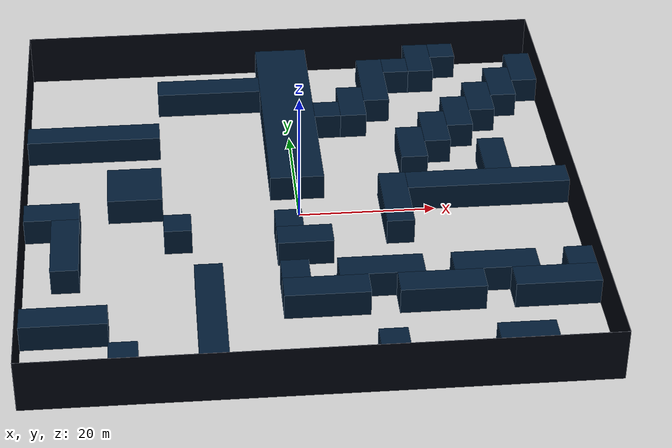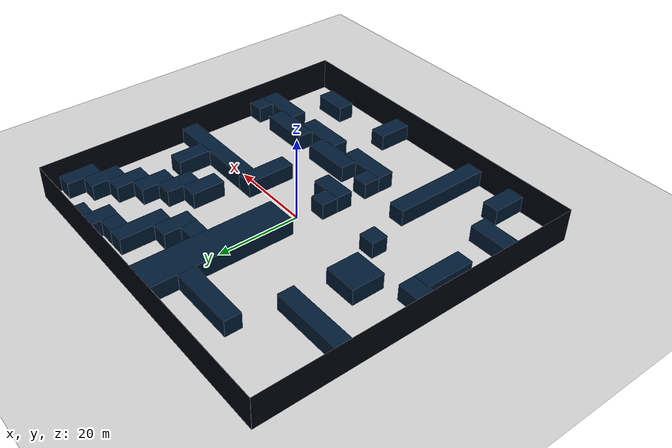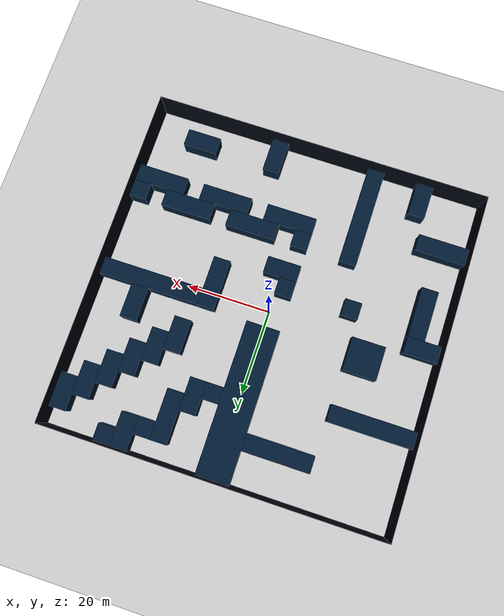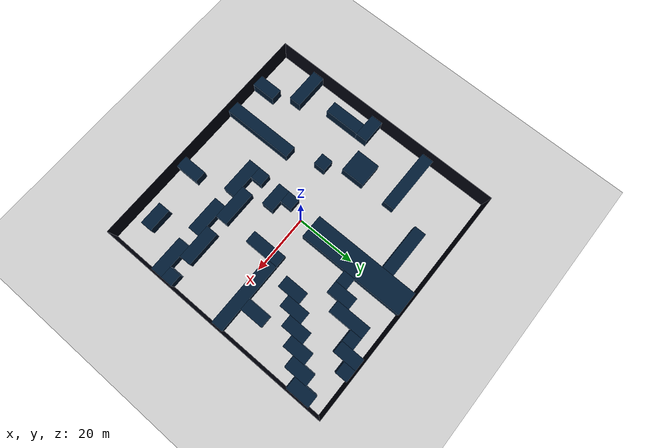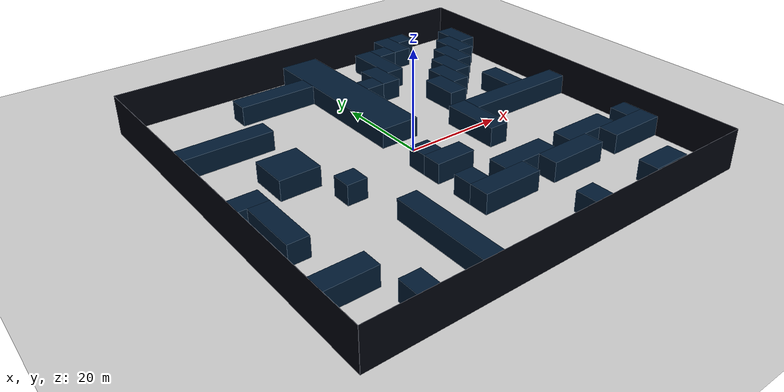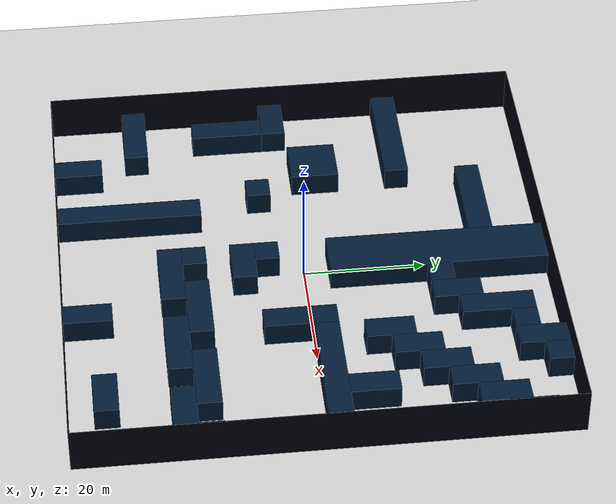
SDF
<?xml version="1.0"?>
<sdf version='1.8'>
    <world name='maze_4x'>
        <physics name='1ms' type='ignored'>
            <max_step_size>0.003</max_step_size>
            <real_time_factor>1</real_time_factor>
            <real_time_update_rate>1000</real_time_update_rate>
        </physics>

        <!-- Plugins remain the same -->
        <plugin name="gz::sim::systems::Physics" filename="gz-sim-physics-system" />
        <plugin name="gz::sim::systems::UserCommands" filename="gz-sim-user-commands-system" />
        <plugin name="gz::sim::systems::SceneBroadcaster" filename="gz-sim-scene-broadcaster-system" />
        <plugin name="gz::sim::systems::Contact" filename="gz-sim-contact-system" />
        <plugin name="gz::sim::systems::Sensors" filename="gz-sim-sensors-system">
            <render_engine>ogre2</render_engine>
        </plugin>

        <gui fullscreen="0">
          <camera name="user_camera">
            <!-- Camera pose scaled 4x: -10 -10 15 -> -40 -40 60 -->
            <pose>-40 -40 60 0 0.7 0.8</pose>
            <view_controller>orbit</view_controller>
          </camera>
        </gui>

        <light name='sun' type='directional'>
            <cast_shadows>1</cast_shadows>
            <!-- Light pose Z coordinate scaled 4x: 10 -> 40 -->
            <pose>0 0 40 0 -0 0</pose>
            <diffuse>0.8 0.8 0.8 1</diffuse>
            <specular>0.2 0.2 0.2 1</specular>
            <attenuation>
                <!-- Range scaled 4x: 1000 -> 4000 -->
                <range>4000</range>
                <constant>0.90000000000000002</constant>
                <linear>0.01</linear>
                <quadratic>0.001</quadratic>
            </attenuation>
            <direction>-0.5 0.1 -0.9</direction>
            <spot>
                <inner_angle>0</inner_angle>
                <outer_angle>0</outer_angle>
                <falloff>0</falloff>
            </spot>
        </light>
        <gravity>0 0 -9.8</gravity>
        <magnetic_field>6e-06 2.3e-05 -4.2e-05</magnetic_field>
        <atmosphere type='adiabatic' />
        <scene>
            <ambient>0.4 0.4 0.4 1</ambient>
            <background>0.7 0.7 0.7 1</background>
            <shadows>1</shadows>
        </scene>
        <model name='ground_plane'>
            <static>1</static>
            <link name='link'>
                <collision name='collision'>
                    <geometry>
                        <plane>
                            <normal>0 0 1</normal>
                            <!-- Size scaled 4x: 100 100 -> 400 400 -->
                            <size>400 400</size>
                        </plane>
                    </geometry>
                    <surface>
                        <friction>
                            <ode />
                        </friction>
                        <bounce />
                        <contact />
                    </surface>
                </collision>
                <visual name='visual'>
                    <geometry>
                        <plane>
                            <normal>0 0 1</normal>
                            <!-- Size scaled 4x: 100 100 -> 400 400 -->
                            <size>400 400</size>
                        </plane>
                    </geometry>
                    <material>
                        <ambient>0.8 0.8 0.8 1</ambient>
                        <diffuse>0.8 0.8 0.8 1</diffuse>
                        <specular>0.8 0.8 0.8 1</specular>
                    </material>
                    <plugin name='__default__' filename='__default__' />
                </visual>
            </link>
            <plugin name='__default__' filename='__default__' />
            <pose>0 0 0 0 -0 0</pose>
        </model>

        <model name='border'>
            <!-- Border Z pose scaled 4x: 1 -> 4 -->
            <pose>0 0 4 0 0 0</pose>
            <static>true</static>
            <link name='wall1'>
                <!-- Pose scaled 4x: -10.005 0 0 -> -40.02 0 0 -->
                <pose>-40.02 0 0 0 0 0</pose>
                <static>true</static>
                <collision name='wall1_collision'>
                    <geometry>
                        <!-- Size scaled 4x: 0.01 20 2 -> 0.04 80 8 -->
                        <box>
                            <size>0.04 80 8</size>
                        </box>
                    </geometry>
                </collision>
                <visual name='wall1_visual'>
                    <geometry>
                        <box>
                            <size>0.04 80 8</size>
                        </box>
                    </geometry>
                    <material>
                        <ambient>0.1 0.1 0.1 1</ambient>
                        <diffuse>0 0.01 0.05 1</diffuse>
                        <specular>0 0.01 0.05 1</specular>
                    </material>
                </visual>
            </link>
            <link name='wall2'>
                <!-- Pose scaled 4x: 10.005 0 0 -> 40.02 0 0 -->
                <pose>40.02 0 0 0 0 0</pose>
                <static>true</static>
                <collision name='wall2_collision'>
                    <geometry>
                        <!-- Size scaled 4x: 0.01 20 2 -> 0.04 80 8 -->
                        <box>
                            <size>0.04 80 8</size>
                        </box>
                    </geometry>
                </collision>
                <visual name='wall2_visual'>
                    <geometry>
                        <box>
                            <size>0.04 80 8</size>
                        </box>
                    </geometry>
                    <material>
                        <ambient>0.1 0.1 0.1 1</ambient>
                        <diffuse>0 0.01 0.05 1</diffuse>
                        <specular>0 0.01 0.05 1</specular>
                    </material>
                </visual>
            </link>
            <link name='wall3'>
                <!-- Pose scaled 4x: 0 10.005 0 -> 0 40.02 0 -->
                <pose>0 40.02 0 0 0 0</pose>
                <static>true</static>
                <collision name='wall3_collision'>
                    <geometry>
                        <!-- Size scaled 4x: 20 0.01 2 -> 80 0.04 8 -->
                        <box>
                            <size>80 0.04 8</size>
                        </box>
                    </geometry>
                </collision>
                <visual name='wall3_visual'>
                    <geometry>
                        <box>
                            <size>80 0.04 8</size>
                        </box>
                    </geometry>
                    <material>
                        <ambient>0.1 0.1 0.1 1</ambient>
                        <diffuse>0 0.01 0.05 1</diffuse>
                        <specular>0 0.01 0.05 1</specular>
                    </material>
                </visual>
            </link>
            <link name='wall4'>
                <!-- Pose scaled 4x: 0 -10.005 0 -> 0 -40.02 0 -->
                <pose>0 -40.02 0 0 0 0</pose>
                <static>true</static>
                <collision name='wall4_collision'>
                    <geometry>
                        <!-- Size scaled 4x: 20 0.01 2 -> 80 0.04 8 -->
                        <box>
                            <size>80 0.04 8</size>
                        </box>
                    </geometry>
                    <material>
                        <ambient>0.1 0.1 0.1 1</ambient>
                        <diffuse>0 0.01 0.05 1</diffuse>
                        <specular>0 0.01 0.05 1</specular>
                    </material>
                </collision>
                <visual name='wall4_visual'>
                    <geometry>
                        <box>
                            <size>80 0.04 8</size>
                        </box>
                    </geometry>
                    <material>
                        <ambient>0.1 0.1 0.1 1</ambient>
                        <diffuse>0 0.01 0.05 1</diffuse>
                        <specular>0 0.01 0.05 1</specular>
                    </material>
                </visual>
            </link>
        </model>

        <model name='obstacles'>
            <!-- Obstacles Z pose scaled 4x: 0.5 -> 2 -->
            <pose>0 0 2 0 0 0</pose>
            <static>true</static>
            <link name='wall1'>
                <!-- Pose scaled 4x: -6.5 -9 0 -> -26 -36 0.0 -->
                <!-- Size scaled 4x: 1 2 1 -> 4 8 4 -->
                <pose>-26 -36 0 0 0 0</pose>
                <static>true</static>
                <collision name='wall1_collision'>
                    <geometry>
                        <box>
                            <size>4 8 4</size>
                        </box>
                    </geometry>
                </collision>
                <visual name='wall1_visual'>
                    <geometry>
                        <box>
                            <size>4 8 4</size>
                        </box>
                    </geometry>
                    <material>
                        <ambient>0.1 0.1 0.1 1</ambient>
                        <diffuse>0 0.1 0.2 1</diffuse>
                        <specular>0 0.01 0.05 1</specular>
                    </material>
                </visual>
            </link>

            <link name='wall2'>
                <!-- Pose scaled 4x: -8.5 -6.5 0 -> -34 -26 0.0 -->
                <!-- Size scaled 4x: 3 1 1 -> 12 4 4 -->
                <pose>-34 -26 0 0 0 0</pose>
                <static>true</static>
                <collision name='wall2_collision'>
                    <geometry>
                        <box>
                            <size>12 4 4</size>
                        </box>
                    </geometry>
                </collision>
                <visual name='wall2_visual'>
                    <geometry>
                        <box>
                            <size>12 4 4</size>
                        </box>
                    </geometry>
                    <material>
                        <ambient>0.1 0.1 0.1 1</ambient>
                        <diffuse>0 0.1 0.2 1</diffuse>
                        <specular>0 0.01 0.05 1</specular>
                    </material>
                </visual>
            </link>

            <link name='wall3'>
                <!-- Pose scaled 4x: -3.5 -7 0 -> -14 -28 0.0 -->
                <!-- Size scaled 4x: 1 6 1 -> 4 24 4 -->
                <pose>-14 -28 0 0 0 0</pose>
                <static>true</static>
                <collision name='wall3_collision'>
                    <geometry>
                        <box>
                            <size>4 24 4</size>
                        </box>
                    </geometry>
                </collision>
                <visual name='wall3_visual'>
                    <geometry>
                        <box>
                            <size>4 24 4</size>
                        </box>
                    </geometry>
                    <material>
                        <ambient>0.1 0.1 0.1 1</ambient>
                        <diffuse>0 0.1 0.2 1</diffuse>
                        <specular>0 0.01 0.05 1</specular>
                    </material>
                </visual>
            </link>

            <link name='wall4'>
                <!-- Pose scaled 4x: 2.5 -9 0 -> 10 -36 0.0 -->
                <!-- Size scaled 4x: 1 2 1 -> 4 8 4 -->
                <pose>10 -36 0 0 0 0</pose>
                <static>true</static>
                <collision name='wall4_collision'>
                    <geometry>
                        <box>
                            <size>4 8 4</size>
                        </box>
                    </geometry>
                </collision>
                <visual name='wall4_visual'>
                    <geometry>
                        <box>
                            <size>4 8 4</size>
                        </box>
                    </geometry>
                    <material>
                        <ambient>0.1 0.1 0.1 1</ambient>
                        <diffuse>0 0.1 0.2 1</diffuse>
                        <specular>0 0.01 0.05 1</specular>
                    </material>
                </visual>
            </link>

            <link name='wall5'>
                <!-- Pose scaled 4x: 7 -8.5 0 -> 28 -34 0.0 -->
                <!-- Size scaled 4x: 2 1 1 -> 8 4 4 -->
                <pose>28 -34 0 0 0 0</pose>
                <static>true</static>
                <collision name='wall5_collision'>
                    <geometry>
                        <box>
                            <size>8 4 4</size>
                        </box>
                    </geometry>
                </collision>
                <visual name='wall5_visual'>
                    <geometry>
                        <box>
                            <size>8 4 4</size>
                        </box>
                    </geometry>
                    <material>
                        <ambient>0.1 0.1 0.1 1</ambient>
                        <diffuse>0 0.1 0.2 1</diffuse>
                        <specular>0 0.01 0.05 1</specular>
                    </material>
                </visual>
            </link>

            <link name='wall6'>
                <!-- Pose scaled 4x: -9 -0.5 0 -> -36 -2 0.0 -->
                <!-- Size scaled 4x: 2 1 1 -> 8 4 4 -->
                <pose>-36 -2 0 0 0 0</pose>
                <static>true</static>
                <collision name='wall6_collision'>
                    <geometry>
                        <box>
                            <size>8 4 4</size>
                        </box>
                    </geometry>
                </collision>
                <visual name='wall6_visual'>
                    <geometry>
                        <box>
                            <size>8 4 4</size>
                        </box>
                    </geometry>
                    <material>
                        <ambient>0.1 0.1 0.1 1</ambient>
                        <diffuse>0 0.1 0.2 1</diffuse>
                        <specular>0 0.01 0.05 1</specular>
                    </material>
                </visual>
            </link>

            <link name='wall7'>
                <!-- Pose scaled 4x: -8.5 -2.5 0 -> -34 -10 0.0 -->
                <!-- Size scaled 4x: 1 3 1 -> 4 12 4 -->
                <pose>-34 -10 0 0 0 0</pose>
                <static>true</static>
                <collision name='wall7_collision'>
                    <geometry>
                        <box>
                            <size>4 12 4</size>
                        </box>
                    </geometry>
                </collision>
                <visual name='wall7_visual'>
                    <geometry>
                        <box>
                            <size>4 12 4</size>
                        </box>
                    </geometry>
                    <material>
                        <ambient>0.1 0.1 0.1 1</ambient>
                        <diffuse>0 0.1 0.2 1</diffuse>
                        <specular>0 0.01 0.05 1</specular>
                    </material>
                </visual>
            </link>

            <link name='wall8'>
                <!-- Pose scaled 4x: -4.5 -1.5 0 -> -18 -6 0.0 -->
                <!-- Size scaled 4x: 1 1 1 -> 4 4 4 -->
                <pose>-18 -6 0 0 0 0</pose>
                <static>true</static>
                <collision name='wall8_collision'>
                    <geometry>
                        <box>
                            <size>4 4 4</size>
                        </box>
                    </geometry>
                </collision>
                <visual name='wall8_visual'>
                    <geometry>
                        <box>
                            <size>4 4 4</size>
                        </box>
                    </geometry>
                    <material>
                        <ambient>0.1 0.1 0.1 1</ambient>
                        <diffuse>0 0.1 0.2 1</diffuse>
                        <specular>0 0.01 0.05 1</specular>
                    </material>
                </visual>
            </link>

            <link name='wall9'>
                <!-- Pose scaled 4x: -6 1 0 -> -24 4 0.0 -->
                <!-- Size scaled 4x: 2 2 1 -> 8 8 4 -->
                <pose>-24 4 0 0 0 0</pose>
                <static>true</static>
                <collision name='wall9_collision'>
                    <geometry>
                        <box>
                            <size>8 8 4</size>
                        </box>
                    </geometry>
                </collision>
                <visual name='wall9_visual'>
                    <geometry>
                        <box>
                            <size>8 8 4</size>
                        </box>
                    </geometry>
                    <material>
                        <ambient>0.1 0.1 0.1 1</ambient>
                        <diffuse>0 0.1 0.2 1</diffuse>
                        <specular>0 0.01 0.05 1</specular>
                    </material>
                </visual>
            </link>

            <link name='wall10'>
                <!-- Pose scaled 4x: -7.5 4.5 0 -> -30 18 0.0 -->
                <!-- Size scaled 4x: 5 1 1 -> 20 4 4 -->
                <pose>-30 18 0 0 0 0</pose>
                <static>true</static>
                <collision name='wall10_collision'>
                    <geometry>
                        <box>
                            <size>20 4 4</size>
                        </box>
                    </geometry>
                </collision>
                <visual name='wall10_visual'>
                    <geometry>
                        <box>
                            <size>20 4 4</size>
                        </box>
                    </geometry>
                    <material>
                        <ambient>0.1 0.1 0.1 1</ambient>
                        <diffuse>0 0.1 0.2 1</diffuse>
                        <specular>0 0.01 0.05 1</specular>
                    </material>
                </visual>
            </link>

            <link name='wall11'>
                <!-- Pose scaled 4x: -3 7.5 0 -> -12 30 0.0 -->
                <!-- Size scaled 4x: 4 1 1 -> 16 4 4 -->
                <pose>-12 30 0 0 0 0</pose>
                <static>true</static>
                <collision name='wall11_collision'>
                    <geometry>
                        <box>
                            <size>16 4 4</size>
                        </box>
                    </geometry>
                </collision>
                <visual name='wall11_visual'>
                    <geometry>
                        <box>
                            <size>16 4 4</size>
                        </box>
                    </geometry>
                    <material>
                        <ambient>0.1 0.1 0.1 1</ambient>
                        <diffuse>0 0.1 0.2 1</diffuse>
                        <specular>0 0.01 0.05 1</specular>
                    </material>
                </visual>
            </link>
            <link name='wall12'>
                <!-- Pose scaled 4x: 0 5.5 0 -> 0 22 0.0 -->
                <!-- Size scaled 4x: 2 9 1 -> 8 36 4 -->
                <pose>0 22 0 0 0 0</pose>
                <static>true</static>
                <collision name='wall12_collision'>
                    <geometry>
                        <box>
                            <size>8 36 4</size>
                        </box>
                    </geometry>
                </collision>
                <visual name='wall12_visual'>
                    <geometry>
                        <box>
                            <size>8 36 4</size>
                        </box>
                    </geometry>
                    <material>
                        <ambient>0.1 0.1 0.1 1</ambient>
                        <diffuse>0 0.1 0.2 1</diffuse>
                        <specular>0 0.01 0.05 1</specular>
                    </material>
                </visual>
            </link>

            <link name='wall13'>
                <!-- Pose scaled 4x: 0 -2.5 0 -> 0 -10 0.0 -->
                <!-- Size scaled 4x: 2 1 1 -> 8 4 4 -->
                <pose>0 -10 0 0 0 0</pose>
                <static>true</static>
                <collision name='wall13_collision'>
                    <geometry>
                        <box>
                            <size>8 4 4</size>
                        </box>
                    </geometry>
                </collision>
                <visual name='wall13_visual'>
                    <geometry>
                        <box>
                            <size>8 4 4</size>
                        </box>
                    </geometry>
                    <material>
                        <ambient>0.1 0.1 0.1 1</ambient>
                        <diffuse>0 0.1 0.2 1</diffuse>
                        <specular>0 0.01 0.05 1</specular>
                    </material>
                </visual>
            </link>

            <link name='wall14'>
                <!-- Pose scaled 4x: -0.5 -1.5 0 -> -2 -6 0.0 -->
                <!-- Size scaled 4x: 1 1 1 -> 4 4 4 -->
                <pose>-2 -6 0 0 0 0</pose>
                <static>true</static>
                <collision name='wall14_collision'>
                    <geometry>
                        <box>
                            <size>4 4 4</size>
                        </box>
                    </geometry>
                </collision>
                <visual name='wall14_visual'>
                    <geometry>
                        <box>
                            <size>4 4 4</size>
                        </box>
                    </geometry>
                    <material>
                        <ambient>0.1 0.1 0.1 1</ambient>
                        <diffuse>0 0.1 0.2 1</diffuse>
                        <specular>0 0.01 0.05 1</specular>
                    </material>
                </visual>
            </link>

            <link name='wall15'>
                <!-- Pose scaled 4x: -0.5 -4.5 0 -> -2 -18 0.0 -->
                <!-- Size scaled 4x: 1 1 1 -> 4 4 4 -->
                <pose>-2 -18 0 0 0 0</pose>
                <static>true</static>
                <collision name='wall15_collision'>
                    <geometry>
                        <box>
                            <size>4 4 4</size>
                        </box>
                    </geometry>
                </collision>
                <visual name='wall15_visual'>
                    <geometry>
                        <box>
                            <size>4 4 4</size>
                        </box>
                    </geometry>
                    <material>
                        <ambient>0.1 0.1 0.1 1</ambient>
                        <diffuse>0 0.1 0.2 1</diffuse>
                        <specular>0 0.01 0.05 1</specular>
                    </material>
                </visual>
            </link>

            <link name='wall16'>
                <!-- Pose scaled 4x: 0.5 -5.5 0 -> 2 -22 0.0 -->
                <!-- Size scaled 4x: 3 1 1 -> 12 4 4 -->
                <pose>2 -22 0 0 0 0</pose>
                <static>true</static>
                <collision name='wall16_collision'>
                    <geometry>
                        <box>
                            <size>12 4 4</size>
                        </box>
                    </geometry>
                </collision>
                <visual name='wall16_visual'>
                    <geometry>
                        <box>
                            <size>12 4 4</size>
                        </box>
                    </geometry>
                    <material>
                        <ambient>0.1 0.1 0.1 1</ambient>
                        <diffuse>0 0.1 0.2 1</diffuse>
                        <specular>0 0.01 0.05 1</specular>
                    </material>
                </visual>
            </link>

            <link name='wall17'>
                <!-- Pose scaled 4x: 2.5 -4.5 0 -> 10 -18 0.0 -->
                <!-- Size scaled 4x: 3 1 1 -> 12 4 4 -->
                <pose>10 -18 0 0 0 0</pose>
                <static>true</static>
                <collision name='wall17_collision'>
                    <geometry>
                        <box>
                            <size>12 4 4</size>
                        </box>
                    </geometry>
                </collision>
                <visual name='wall17_visual'>
                    <geometry>
                        <box>
                            <size>12 4 4</size>
                        </box>
                    </geometry>
                    <material>
                        <ambient>0.1 0.1 0.1 1</ambient>
                        <diffuse>0 0.1 0.2 1</diffuse>
                        <specular>0 0.01 0.05 1</specular>
                    </material>
                </visual>
            </link>

            <link name='wall18'>
                <!-- Pose scaled 4x: 4.5 -5.5 0 -> 18 -22 0.0 -->
                <!-- Size scaled 4x: 3 1 1 -> 12 4 4 -->
                <pose>18 -22 0 0 0 0</pose>
                <static>true</static>
                <collision name='wall18_collision'>
                    <geometry>
                        <box>
                            <size>12 4 4</size>
                        </box>
                    </geometry>
                </collision>
                <visual name='wall18_visual'>
                    <geometry>
                        <box>
                            <size>12 4 4</size>
                        </box>
                    </geometry>
                    <material>
                        <ambient>0.1 0.1 0.1 1</ambient>
                        <diffuse>0 0.1 0.2 1</diffuse>
                        <specular>0 0.01 0.05 1</specular>
                    </material>
                </visual>
            </link>

            <link name='wall19'>
                <!-- Pose scaled 4x: 6.5 -4.5 0 -> 26 -18 0.0 -->
                <!-- Size scaled 4x: 3 1 1 -> 12 4 4 -->
                <pose>26 -18 0 0 0 0</pose>
                <static>true</static>
                <collision name='wall19_collision'>
                    <geometry>
                        <box>
                            <size>12 4 4</size>
                        </box>
                    </geometry>
                </collision>
                <visual name='wall19_visual'>
                    <geometry>
                        <box>
                            <size>12 4 4</size>
                        </box>
                    </geometry>
                    <material>
                        <ambient>0.1 0.1 0.1 1</ambient>
                        <diffuse>0 0.1 0.2 1</diffuse>
                        <specular>0 0.01 0.05 1</specular>
                    </material>
                </visual>
            </link>

            <link name='wall20'>
                <!-- Pose scaled 4x: 8.5 -5.5 0 -> 34 -22 0.0 -->
                <!-- Size scaled 4x: 3 1 1 -> 12 4 4 -->
                <pose>34 -22 0 0 0 0</pose>
                <static>true</static>
                <collision name='wall20_collision'>
                    <geometry>
                        <box>
                            <size>12 4 4</size>
                        </box>
                    </geometry>
                </collision>
                <visual name='wall20_visual'>
                    <geometry>
                        <box>
                            <size>12 4 4</size>
                        </box>
                    </geometry>
                    <material>
                        <ambient>0.1 0.1 0.1 1</ambient>
                        <diffuse>0 0.1 0.2 1</diffuse>
                        <specular>0 0.01 0.05 1</specular>
                    </material>
                </visual>
            </link>

            <link name='wall21'>
                <!-- Pose scaled 4x: 9.5 -4.5 0 -> 38 -18 0.0 -->
                <!-- Size scaled 4x: 1 1 1 -> 4 4 4 -->
                <pose>38 -18 0 0 0 0</pose>
                <static>true</static>
                <collision name='wall21_collision'>
                    <geometry>
                        <box>
                            <size>4 4 4</size>
                        </box>
                    </geometry>
                </collision>
                <visual name='wall21_visual'>
                    <geometry>
                        <box>
                            <size>4 4 4</size>
                        </box>
                    </geometry>
                    <material>
                        <ambient>0.1 0.1 0.1 1</ambient>
                        <diffuse>0 0.1 0.2 1</diffuse>
                        <specular>0 0.01 0.05 1</specular>
                    </material>
                </visual>
            </link>

            <link name='wall22'>
                <!-- Pose scaled 4x: 3.5 -0.5 0 -> 14 -2 0.0 -->
                <!-- Size scaled 4x: 1 3 1 -> 4 12 4 -->
                <pose>14 -2 0 0 0 0</pose>
                <static>true</static>
                <collision name='wall22_collision'>
                    <geometry>
                        <box>
                            <size>4 12 4</size>
                        </box>
                    </geometry>
                </collision>
                <visual name='wall22_visual'>
                    <geometry>
                        <box>
                            <size>4 12 4</size>
                        </box>
                    </geometry>
                    <material>
                        <ambient>0.1 0.1 0.1 1</ambient>
                        <diffuse>0 0.1 0.2 1</diffuse>
                        <specular>0 0.01 0.05 1</specular>
                    </material>
                </visual>
            </link>

            <link name='wall23'>
                <!-- Pose scaled 4x: 7 0.5 0 -> 28 2 0.0 -->
                <!-- Size scaled 4x: 6 1 1 -> 24 4 4 -->
                <pose>28 2 0 0 0 0</pose>
                <static>true</static>
                <collision name='wall23_collision'>
                    <geometry>
                        <box>
                            <size>24 4 4</size>
                        </box>
                    </geometry>
                </collision>
                <visual name='wall23_visual'>
                    <geometry>
                        <box>
                            <size>24 4 4</size>
                        </box>
                    </geometry>
                    <material>
                        <ambient>0.1 0.1 0.1 1</ambient>
                        <diffuse>0 0.1 0.2 1</diffuse>
                        <specular>0 0.01 0.05 1</specular>
                    </material>
                </visual>
            </link>

            <link name='wall24'>
                <!-- Pose scaled 4x: 7.5 2 0 -> 30 8 0.0 -->
                <!-- Size scaled 4x: 1 2 1 -> 4 8 4 -->
                <pose>30 8 0 0 0 0</pose>
                <static>true</static>
                <collision name='wall24_collision'>
                    <geometry>
                        <box>
                            <size>4 8 4</size>
                        </box>
                    </geometry>
                </collision>
                <visual name='wall24_visual'>
                    <geometry>
                        <box>
                            <size>4 8 4</size>
                        </box>
                    </geometry>
                    <material>
                        <ambient>0.1 0.1 0.1 1</ambient>
                        <diffuse>0 0.1 0.2 1</diffuse>
                        <specular>0 0.01 0.05 1</specular>
                    </material>
                </visual>
            </link>

            <link name='wall25'>
                <!-- Pose scaled 4x: 1.5 5.5 0 -> 6 22 0.0 -->
                <!-- Size scaled 4x: 1 1 1 -> 4 4 4 -->
                <pose>6 22 0 0 0 0</pose>
                <static>true</static>
                <collision name='wall25_collision'>
                    <geometry>
                        <box>
                            <size>4 4 4</size>
                        </box>
                    </geometry>
                </collision>
                <visual name='wall25_visual'>
                    <geometry>
                        <box>
                            <size>4 4 4</size>
                        </box>
                    </geometry>
                    <material>
                        <ambient>0.1 0.1 0.1 1</ambient>
                        <diffuse>0 0.1 0.2 1</diffuse>
                        <specular>0 0.01 0.05 1</specular>
                    </material>
                </visual>
            </link>

            <link name='wall26'>
                <!-- Pose scaled 4x: 2.5 6 0 -> 10 24 0.0 -->
                <!-- Size scaled 4x: 1 2 1 -> 4 8 4 -->
                <pose>10 24 0 0 0 0</pose>
                <static>true</static>
                <collision name='wall26_collision'>
                    <geometry>
                        <box>
                            <size>4 8 4</size>
                        </box>
                    </geometry>
                </collision>
                <visual name='wall26_visual'>
                    <geometry>
                        <box>
                            <size>4 8 4</size>
                        </box>
                    </geometry>
                    <material>
                        <ambient>0.1 0.1 0.1 1</ambient>
                        <diffuse>0 0.1 0.2 1</diffuse>
                        <specular>0 0.01 0.05 1</specular>
                    </material>
                </visual>
            </link>

            <link name='wall27'>
                <!-- Pose scaled 4x: 3.5 7.5 0 -> 14 30 0.0 -->
                <!-- Size scaled 4x: 1 3 1 -> 4 12 4 -->
                <pose>14 30 0 0 0 0</pose>
                <static>true</static>
                <collision name='wall27_collision'>
                    <geometry>
                        <box>
                            <size>4 12 4</size>
                        </box>
                    </geometry>
                </collision>
                <visual name='wall27_visual'>
                    <geometry>
                        <box>
                            <size>4 12 4</size>
                        </box>
                    </geometry>
                    <material>
                        <ambient>0.1 0.1 0.1 1</ambient>
                        <diffuse>0 0.1 0.2 1</diffuse>
                        <specular>0 0.01 0.05 1</specular>
                    </material>
                </visual>
            </link>

            <link name='wall28'>
                <!-- Pose scaled 4x: 4.5 8.5 0 -> 18 34 0.0 -->
                <!-- Size scaled 4x: 1 1 1 -> 4 4 4 -->
                <pose>18 34 0 0 0 0</pose>
                <static>true</static>
                <collision name='wall28_collision'>
                    <geometry>
                        <box>
                            <size>4 4 4</size>
                        </box>
                    </geometry>
                </collision>
                <visual name='wall28_visual'>
                    <geometry>
                        <box>
                            <size>4 4 4</size>
                        </box>
                    </geometry>
                    <material>
                        <ambient>0.1 0.1 0.1 1</ambient>
                        <diffuse>0 0.1 0.2 1</diffuse>
                        <specular>0 0.01 0.05 1</specular>
                    </material>
                </visual>
            </link>

            <link name='wall29'>
                <!-- Pose scaled 4x: 5.5 9 0 -> 22 36 0.0 -->
                <!-- Size scaled 4x: 1 2 1 -> 4 8 4 -->
                <pose>22 36 0 0 0 0</pose>
                <static>true</static>
                <collision name='wall29_collision'>
                    <geometry>
                        <box>
                            <size>4 8 4</size>
                        </box>
                    </geometry>
                </collision>
                <visual name='wall29_visual'>
                    <geometry>
                        <box>
                            <size>4 8 4</size>
                        </box>
                    </geometry>
                    <material>
                        <ambient>0.1 0.1 0.1 1</ambient>
                        <diffuse>0 0.1 0.2 1</diffuse>
                        <specular>0 0.01 0.05 1</specular>
                    </material>
                </visual>
            </link>

            <link name='wall30'>
                <!-- Pose scaled 4x: 6.5 9.5 0 -> 26 38 0.0 -->
                <!-- Size scaled 4x: 1 1 1 -> 4 4 4 -->
                <pose>26 38 0 0 0 0</pose>
                <static>true</static>
                <collision name='wall30_collision'>
                    <geometry>
                        <box>
                            <size>4 4 4</size>
                        </box>
                    </geometry>
                </collision>
                <visual name='wall30_visual'>
                    <geometry>
                        <box>
                            <size>4 4 4</size>
                        </box>
                    </geometry>
                    <material>
                        <ambient>0.1 0.1 0.1 1</ambient>
                        <diffuse>0 0.1 0.2 1</diffuse>
                        <specular>0 0.01 0.05 1</specular>
                    </material>
                </visual>
            </link>

            <link name='wall31'>
                <!-- Pose scaled 4x: 4.5 3 0 -> 18 12 0.0 -->
                <!-- Size scaled 4x: 1 2 1 -> 4 8 4 -->
                <pose>18 12 0 0 0 0</pose>
                <static>true</static>
                <collision name='wall31_collision'>
                    <geometry>
                        <box>
                            <size>4 8 4</size>
                        </box>
                    </geometry>
                </collision>
                <visual name='wall31_visual'>
                    <geometry>
                        <box>
                            <size>4 8 4</size>
                        </box>
                    </geometry>
                    <material>
                        <ambient>0.1 0.1 0.1 1</ambient>
                        <diffuse>0 0.1 0.2 1</diffuse>
                        <specular>0 0.01 0.05 1</specular>
                    </material>
                </visual>
            </link>

            <link name='wall32'>
                <!-- Pose scaled 4x: 5.5 4 0 -> 22 16 0.0 -->
                <!-- Size scaled 4x: 1 2 1 -> 4 8 4 -->
                <pose>22 16 0 0 0 0</pose>
                <static>true</static>
                <collision name='wall32_collision'>
                    <geometry>
                        <box>
                            <size>4 8 4</size>
                        </box>
                    </geometry>
                </collision>
                <visual name='wall32_visual'>
                    <geometry>
                        <box>
                            <size>4 8 4</size>
                        </box>
                    </geometry>
                    <material>
                        <ambient>0.1 0.1 0.1 1</ambient>
                        <diffuse>0 0.1 0.2 1</diffuse>
                        <specular>0 0.01 0.05 1</specular>
                    </material>
                </visual>
            </link>

            <link name='wall33'>
                <!-- Pose scaled 4x: 6.5 5 0 -> 26 20 0.0 -->
                <!-- Size scaled 4x: 1 2 1 -> 4 8 4 -->
                <pose>26 20 0 0 0 0</pose>
                <static>true</static>
                <collision name='wall33_collision'>
                    <geometry>
                        <box>
                            <size>4 8 4</size>
                        </box>
                    </geometry>
                </collision>
                <visual name='wall33_visual'>
                    <geometry>
                        <box>
                            <size>4 8 4</size>
                        </box>
                    </geometry>
                    <material>
                        <ambient>0.1 0.1 0.1 1</ambient>
                        <diffuse>0 0.1 0.2 1</diffuse>
                        <specular>0 0.01 0.05 1</specular>
                    </material>
                </visual>
            </link>

            <link name='wall34'>
                <!-- Pose scaled 4x: 7.5 6 0 -> 30 24 0.0 -->
                <!-- Size scaled 4x: 1 2 1 -> 4 8 4 -->
                <pose>30 24 0 0 0 0</pose>
                <static>true</static>
                <collision name='wall34_collision'>
                    <geometry>
                        <box>
                            <size>4 8 4</size>
                        </box>
                    </geometry>
                </collision>
                <visual name='wall34_visual'>
                    <geometry>
                        <box>
                            <size>4 8 4</size>
                        </box>
                    </geometry>
                    <material>
                        <ambient>0.1 0.1 0.1 1</ambient>
                        <diffuse>0 0.1 0.2 1</diffuse>
                        <specular>0 0.01 0.05 1</specular>
                    </material>
                </visual>
            </link>

            <link name='wall35'>
                <!-- Pose scaled 4x: 8.5 7 0 -> 34 28 0.0 -->
                <!-- Size scaled 4x: 1 2 1 -> 4 8 4 -->
                <pose>34 28 0 0 0 0</pose>
                <static>true</static>
                <collision name='wall35_collision'>
                    <geometry>
                        <box>
                            <size>4 8 4</size>
                        </box>
                    </geometry>
                </collision>
                <visual name='wall35_visual'>
                    <geometry>
                        <box>
                            <size>4 8 4</size>
                        </box>
                    </geometry>
                    <material>
                        <ambient>0.1 0.1 0.1 1</ambient>
                        <diffuse>0 0.1 0.2 1</diffuse>
                        <specular>0 0.01 0.05 1</specular>
                    </material>
                </visual>
            </link>

            <link name='wall36'>
                <!-- Pose scaled 4x: 9.5 8 0 -> 38 32 0.0 -->
                <!-- Size scaled 4x: 1 2 1 -> 4 8 4 -->
                <pose>38 32 0 0 0 0</pose>
                <static>true</static>
                <collision name='wall36_collision'>
                    <geometry>
                        <box>
                            <size>4 8 4</size>
                        </box>
                    </geometry>
                </collision>
                <visual name='wall36_visual'>
                    <geometry>
                        <box>
                            <size>4 8 4</size>
                        </box>
                    </geometry>
                    <material>
                        <ambient>0.1 0.1 0.1 1</ambient>
                        <diffuse>0 0.1 0.2 1</diffuse>
                        <specular>0 0.01 0.05 1</specular>
                    </material>
                </visual>
            </link>
        </model>
    </world>
</sdf>
